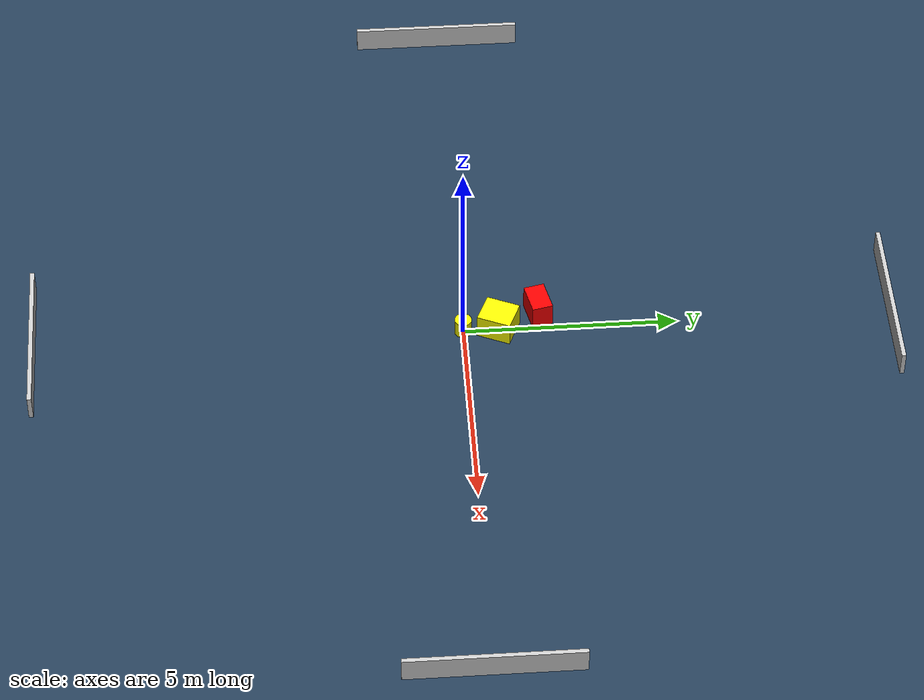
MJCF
<?xml version="1.0" ?>
<mujoco model="generated_environment">
  <option timestep="0.01" integrator="RK4" cone="elliptic"/>
  <default>
    <geom density="1"/>
  </default>
  <asset>
    <texture builtin="gradient" height="3072" name="skybox" rgb1="0.3 0.5 0.7" rgb2="0 0 0" type="skybox" width="512"/>
    <texture builtin="checker" height="300" name="groundplane" rgb1="0.2 0.3 0.4" rgb2="0.1 0.2 0.3" type="2d" width="300"/>
    <material name="groundplane" reflectance="0.2" texrepeat="5 5" texture="groundplane"/>
  </asset>
  <worldbody>
    <light dir="0 0 -1" directional="true" pos="0 0 1.5"/>
    <geom condim="3" friction="0.5 0.005 0.001" material="groundplane" name="floor" pos="0 0 0" size="0 0 0.05" type="plane"/>
    <body name="walls">
      <geom name="wall_1" condim="4" pos="-10.0 0.0 0.3" rgba="0.800000011920929 0.800000011920929 0.800000011920929 1.0" size="0.05 2.0 0.3" type="box"/>
      <geom name="wall_2" condim="4" pos="10.0 0.0 0.3" rgba="0.800000011920929 0.800000011920929 0.800000011920929 1.0" size="0.05 2.0 0.3" type="box"/>
      <geom name="wall_3" condim="4" pos="0.0 -10.0 0.3" rgba="0.800000011920929 0.800000011920929 0.800000011920929 1.0" size="2.0 0.05 0.3" type="box"/>
      <geom name="wall_4" condim="4" pos="0.0 10.0 0.3" rgba="0.800000011920929 0.800000011920929 0.800000011920929 1.0" size="2.0 0.05 0.3" type="box"/>
    </body>
    <body name="robot">
      <joint name="joint_x" type="slide" pos="0 0 0" axis="1 0 0"/>
      <joint name="joint_y" type="slide" pos="0 0 0" axis="0 1 0"/>
      <geom name="robot" type="cylinder" pos="0.0 0.0 0.2" size="0.2 0.2 0.0" mass="5.0" friction="1.0 0.005 0.0001" condim="4" rgba="1.0 1.0 0.0 1.0"/>
    </body>
    <body name="obstacle_1_movable">
      <geom name="obstacle_1_movable" condim="4" pos="-0.01946536035413996 0.8259287910467822 0.3" euler="0 0 156.12599570617215" friction="0.0 0.005 0.001" rgba="1.0 1.0 0.0 1.0" size="0.3529762774837092 0.3994647315425366 0.3" type="box" mass="0.1"/>
      <joint type="free"/>
    </body>
    <body name="obstacle_2_static">
      <geom name="obstacle_2_static" condim="4" pos="-0.42639348869013355 1.7824714814815734 0.3" euler="0 0 282.2313022108257" friction="0.0 0.005 0.001" rgba="1.0 0.0 0.0 1.0" size="0.24302851275205908 0.36967776348921855 0.3" type="box"/>
    </body>
  </worldbody>
  <actuator>
    <motor name="actuator_x" joint="joint_x" gear="1" ctrlrange="-1 1"/>
    <motor name="actuator_y" joint="joint_y" gear="1" ctrlrange="-1 1"/>
  </actuator>
</mujoco>
